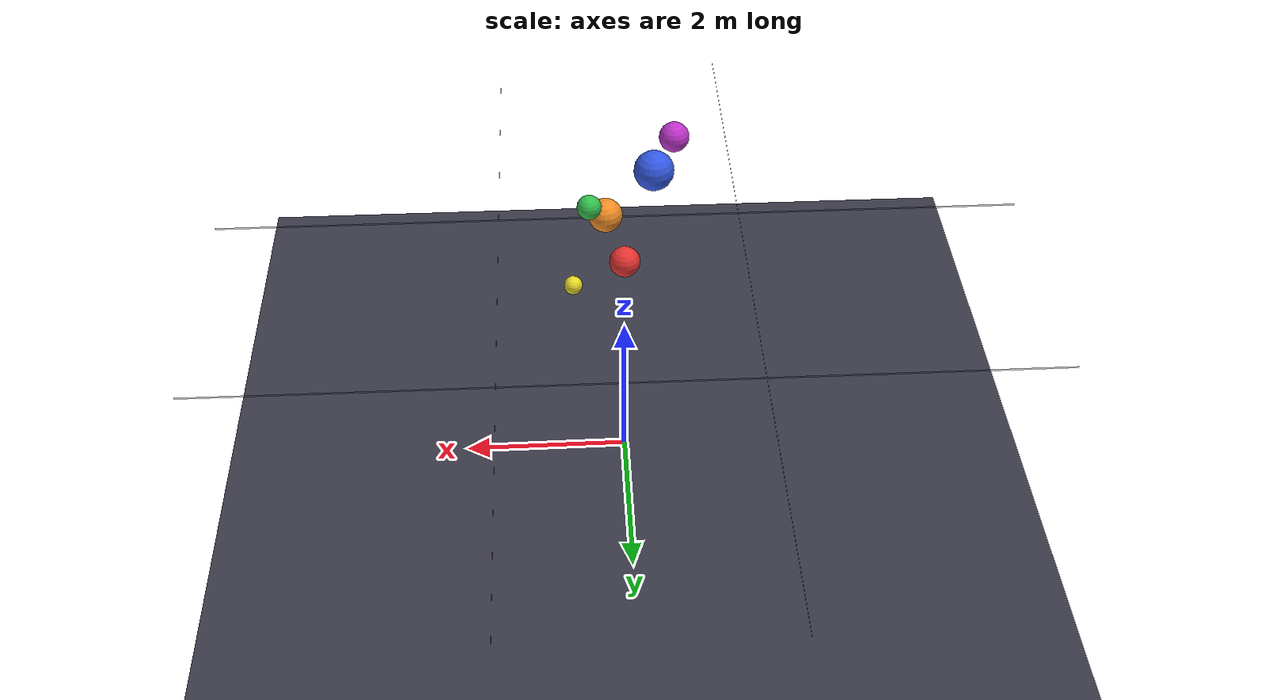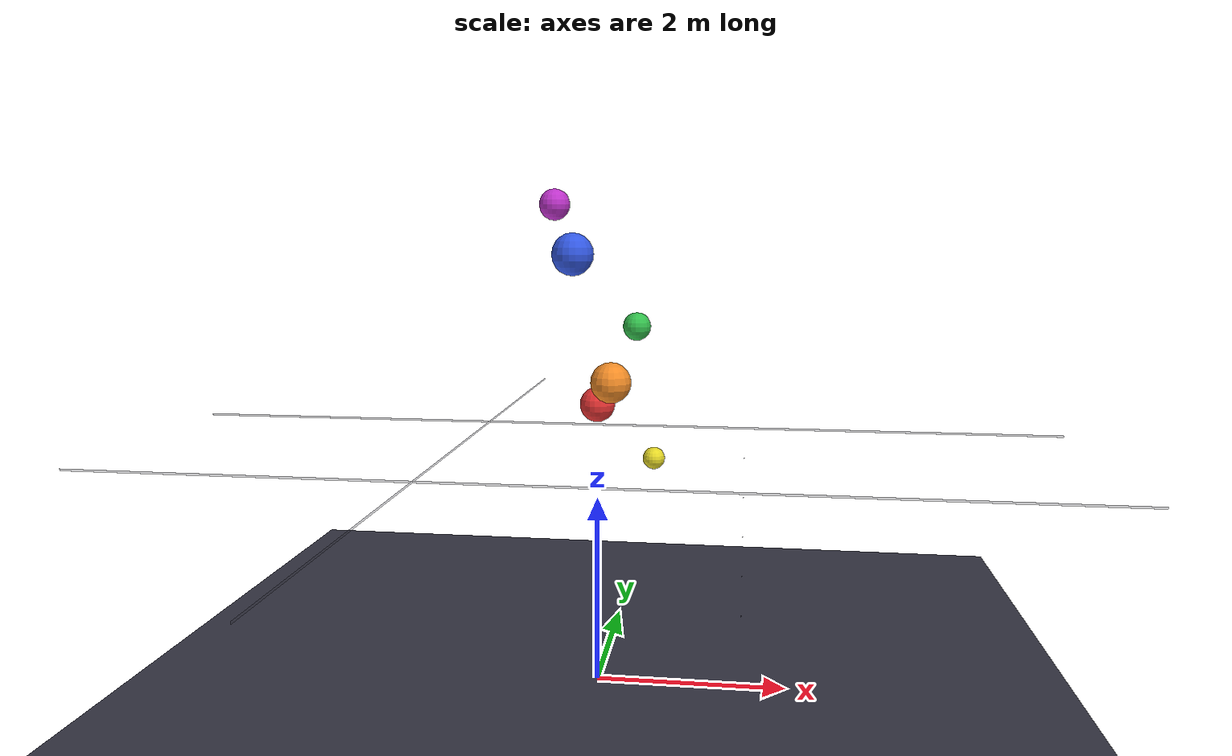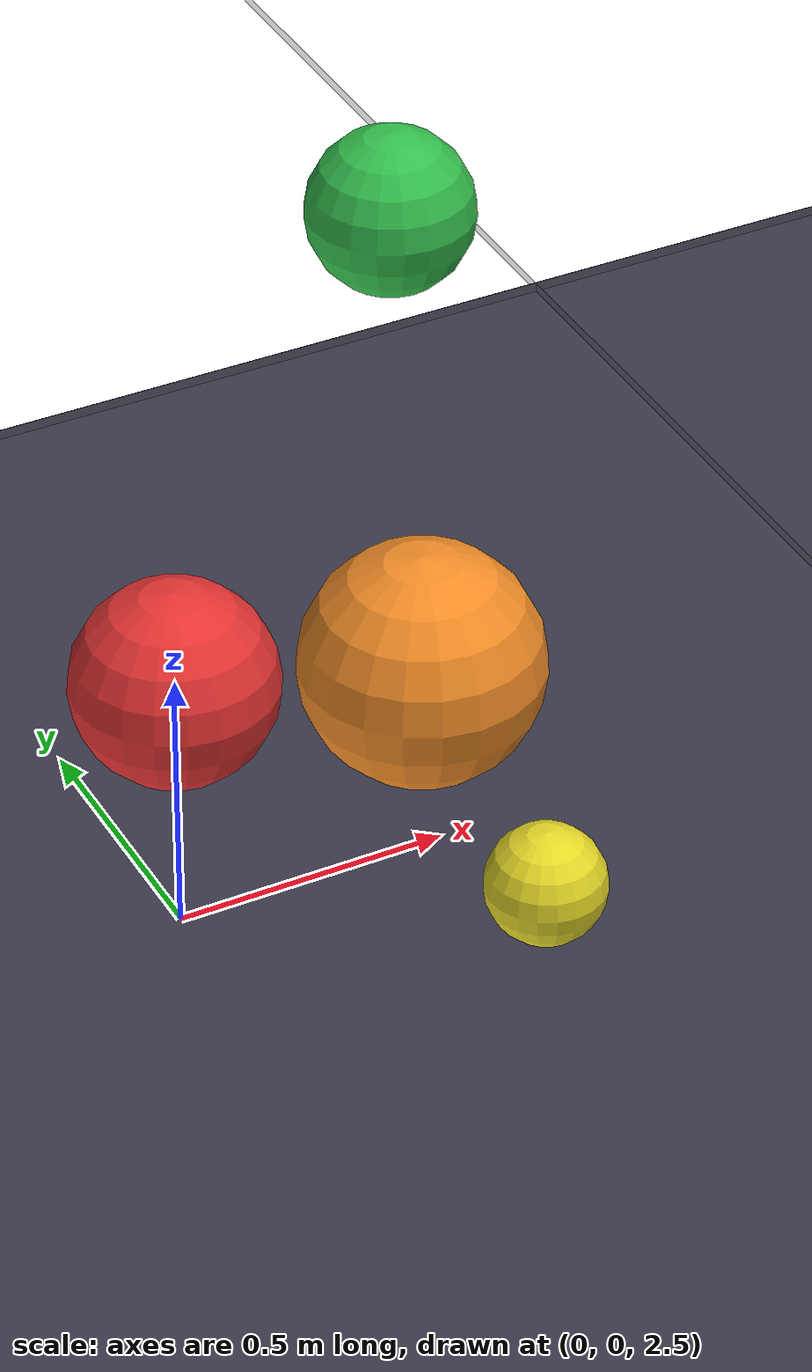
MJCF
<mujoco model="bouncing_balls">
  <option gravity="0 0 -9.81" timestep="0.005"/>
  <default>
    <geom friction="0.6 0.02 0.02" condim="3"/>
  </default>
  <worldbody>
    <light pos="0 0 8" diffuse="0.9 0.9 0.9"/>
    <geom name="floor" type="plane" size="5 5 0.1" rgba="0.22 0.22 0.28 1"/>
    <!-- Walls -->
    <geom name="wall_x1" type="plane" size="0.01 5 5" pos="1.5 0 2.5"
          rgba="0.3 0.3 0.35 0.3" euler="0 90 0"/>
    <geom name="wall_x2" type="plane" size="0.01 5 5" pos="-1.5 0 2.5"
          rgba="0.3 0.3 0.35 0.3" euler="0 -90 0"/>
    <geom name="wall_y1" type="plane" size="5 0.01 5" pos="0 1.5 2.5"
          rgba="0.3 0.3 0.35 0.3" euler="-90 0 0"/>
    <geom name="wall_y2" type="plane" size="5 0.01 5" pos="0 -1.5 2.5"
          rgba="0.3 0.3 0.35 0.3" euler="90 0 0"/>

    <body name="ball_red" pos="0 0 3">
      <freejoint/>
      <geom type="sphere" size="0.18" rgba="0.9 0.2 0.2 1" mass="1"/>
    </body>
    <body name="ball_green" pos="0.4 0 3.8">
      <freejoint/>
      <geom type="sphere" size="0.14" rgba="0.2 0.75 0.3 1" mass="0.5"/>
    </body>
    <body name="ball_blue" pos="-0.3 0.3 4.5">
      <freejoint/>
      <geom type="sphere" size="0.22" rgba="0.2 0.35 0.9 1" mass="1.5"/>
    </body>
    <body name="ball_yellow" pos="0.6 -0.2 2.5">
      <freejoint/>
      <geom type="sphere" size="0.11" rgba="0.9 0.85 0.15 1" mass="0.3"/>
    </body>
    <body name="ball_purple" pos="-0.5 0.4 5">
      <freejoint/>
      <geom type="sphere" size="0.16" rgba="0.75 0.2 0.8 1" mass="0.7"/>
    </body>
    <body name="ball_orange" pos="0.2 -0.5 3.3">
      <freejoint/>
      <geom type="sphere" size="0.2" rgba="0.95 0.55 0.15 1" mass="1.2"/>
    </body>
  </worldbody>
  <sensor>
    <framepos name="ball_red_pos" objtype="body" objname="ball_red"/>
    <framepos name="ball_blue_pos" objtype="body" objname="ball_blue"/>
    <framelinvel name="ball_red_vel" objtype="body" objname="ball_red"/>
    <framelinvel name="ball_blue_vel" objtype="body" objname="ball_blue"/>
  </sensor>
</mujoco>
